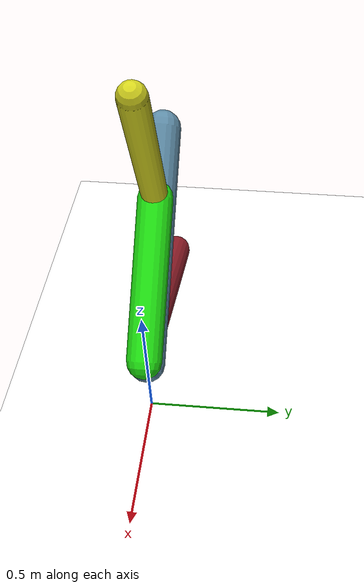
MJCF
<mujoco model="morphology">
  <option timestep="0.01"/>
  <default>
    <default class="/"/>
    <default class="0/"/>
    <default class="0/1/"/>
    <default class="0/1/2/"/>
    <default class="0/3/"/>
  </default>
  <asset>
    <texture name="texplane" type="2d" builtin="checker" rgb1="0.10000000000000001 0.20000000000000001 0.29999999999999999" rgb2="0.20000000000000001 0.29999999999999999 0.40000000000000002" width="300" height="300"/>
    <material name="MatPlane" class="/" texture="texplane" texrepeat="20 20" specular="1" shininess="1" reflectance="0.5"/>
  </asset>
  <worldbody>
    <light name="//unnamed_light_0" class="/" directional="true" pos="0 0 1.5" dir="0 0 -1.3" cutoff="100" exponent="1" diffuse="1 1 1" specular="0.10000000000000001 0.10000000000000001 0.10000000000000001"/>
    <geom name="ground" class="/" type="plane" size="15 15 0.5" material="MatPlane" rgba="1 1 1 1"/>
    <site name="body" class="/" size="9.9999999999999995e-07 9.9999999999999995e-07 9.9999999999999995e-07" pos="0 0 0.25190646052360532"/>
    <body pos="0 0 0.25190646052360532" name="0/">
      <joint name="0/rootx/" class="/" type="slide" axis="1 0 0" limited="false" stiffness="0" armature="0" damping="0"/>
      <joint name="0/rootz/" class="/" type="slide" axis="0 0 1" limited="false" stiffness="0" armature="0" damping="0"/>
      <joint name="0/rooty/" class="/" type="hinge" axis="0 1 0" limited="false" stiffness="0" armature="0" damping="0"/>
      <geom name="0/geom" class="0/" type="capsule" contype="1" conaffinity="1" condim="3" size="0.066198427445982658" rgba="0.36230349110804427 0.5406441357465156 0.64420644637722457 1" friction="0.59999999999999998 0.10000000000000001 0.10000000000000001" fromto="0 0 0 -0.65710704720975499 0 0.57472265574835379"/>
      <site name="0/end0" class="0/" size="0.0050000000000000001" pos="-0.65710704720975499 0 0.57472265574835379"/>
      <site name="0/attach1" class="0/" size="9.9999999999999995e-07 9.9999999999999995e-07 9.9999999999999995e-07" pos="-0.43295263144249574 0 0.37867146184545658"/>
      <body pos="-0.43295263144249574 0 0.37867146184545658" name="0/1/">
        <joint name="0/1/joint/" class="0/" type="hinge" axis="0 1 0" limited="true" range="-49.351444690255889 49.351444690255889"/>
        <geom name="0/1/geom" class="0/1/" type="capsule" contype="1" conaffinity="1" condim="3" size="0.04818326079944775" rgba="0.81930993725435453 0.8166304810118874 0.11119640203578507 1" friction="0.59999999999999998 0.10000000000000001 0.10000000000000001" fromto="0 0 0 0.23205028739731537 0 0.60565680619588447"/>
        <site name="0/1/end1" class="0/1/" size="0.0050000000000000001" pos="0.23205028739731537 0 0.60565680619588447"/>
        <site name="0/1/attach2" class="0/1/" size="9.9999999999999995e-07 9.9999999999999995e-07 9.9999999999999995e-07" pos="0.027328944027598133 0 0.071329198261758625"/>
        <body pos="0.027328944027598133 0 0.071329198261758625" name="0/1/2/">
          <joint name="0/1/2/joint/" class="0/1/" type="hinge" axis="0 1 0" limited="true" range="-53.119299073301711 53.119299073301711"/>
          <geom name="0/1/2/geom" class="0/1/2/" type="capsule" contype="1" conaffinity="1" condim="3" size="0.065090658336542609" rgba="0.12396179863064738 0.88590171022669051 0.067716206590793471 1" friction="0.59999999999999998 0.10000000000000001 0.10000000000000001" fromto="0 0 0 0.44123452988786926 0 -0.38549765535508346"/>
          <site name="0/1/2/end2" class="0/1/2/" size="0.0050000000000000001" pos="0.44123452988786926 0 -0.38549765535508346"/>
        </body>
      </body>
      <site name="0/attach3" class="0/" size="9.9999999999999995e-07 9.9999999999999995e-07 9.9999999999999995e-07" pos="-0.093618221991471864 0 0.081880895050274405"/>
      <body pos="-0.093618221991471864 0 0.081880895050274405" name="0/3/">
        <joint name="0/3/joint/" class="0/" type="hinge" axis="0 1 0" limited="true" range="-42.195923909363842 42.195923909363842"/>
        <geom name="0/3/geom" class="0/3/" type="capsule" contype="1" conaffinity="1" condim="3" size="0.061633431422683321" rgba="0.57063193219995545 0.11543743390343808 0.16240958043480547 1" friction="0.59999999999999998 0.10000000000000001 0.10000000000000001" fromto="0 0 0 -0.67983570176323393 0 -0.23378735176310017"/>
        <site name="0/3/end3" class="0/3/" size="0.0050000000000000001" pos="-0.67983570176323393 0 -0.23378735176310017"/>
      </body>
      <camera name="0/side" class="0/" mode="trackcom" pos="0.40000000000000002 -4 0.20000000000000001" quat="0.70699999999999996 0.70699999999999996 0 0"/>
    </body>
  </worldbody>
  <actuator>
    <motor name="0/1/motor" class="0/1/" ctrllimited="true" ctrlrange="-1 1" gear="75" joint="0/1/joint/"/>
    <motor name="0/1/2/motor" class="0/1/2/" ctrllimited="true" ctrlrange="-1 1" gear="79" joint="0/1/2/joint/"/>
    <motor name="0/3/motor" class="0/3/" ctrllimited="true" ctrlrange="-1 1" gear="52" joint="0/3/joint/"/>
  </actuator>
  <sensor>
    <subtreelinvel name="velocity" body="0/"/>
  </sensor>
</mujoco>
